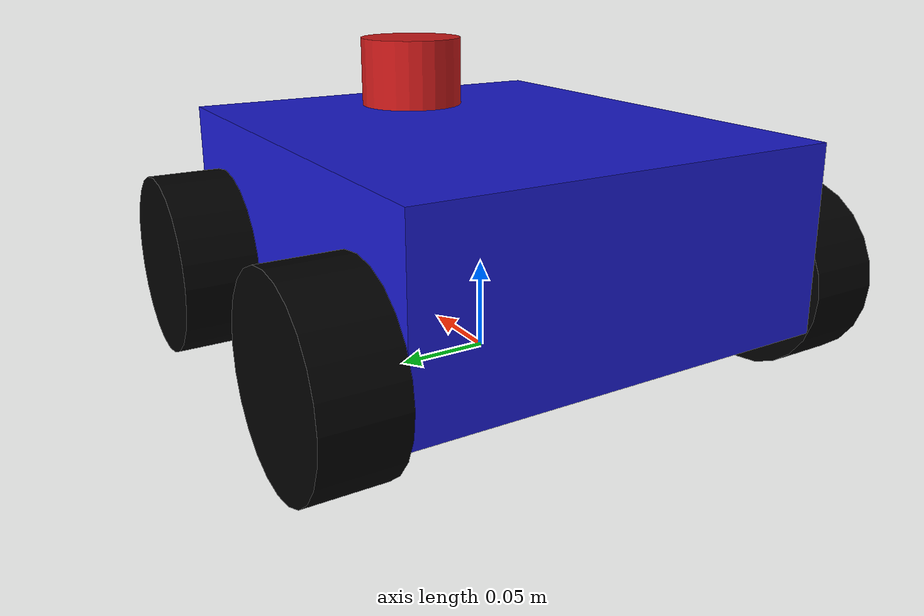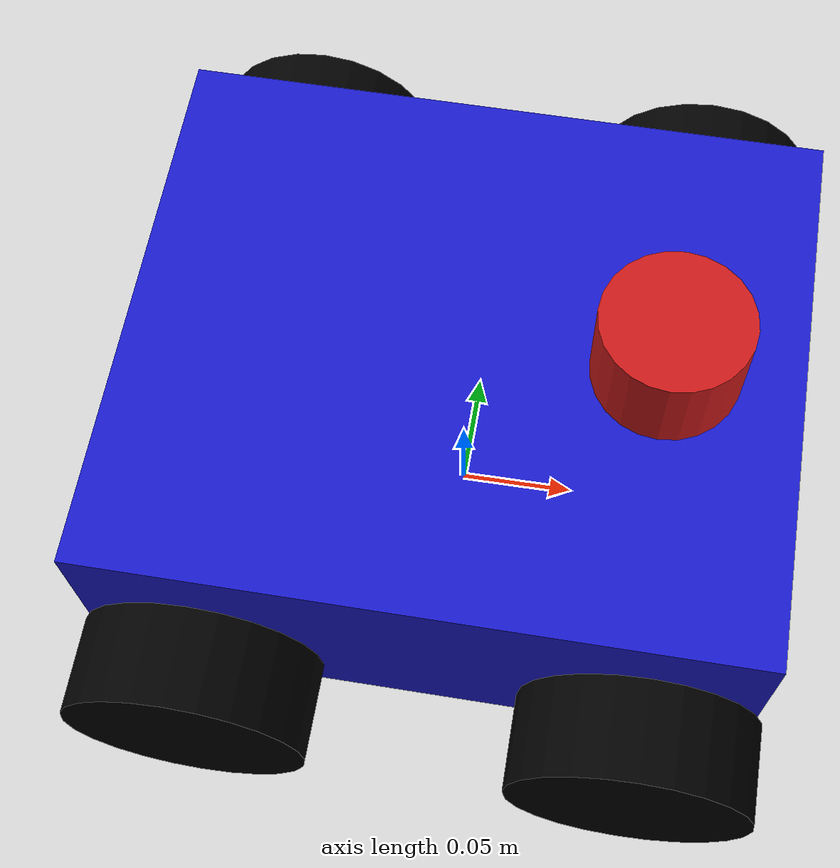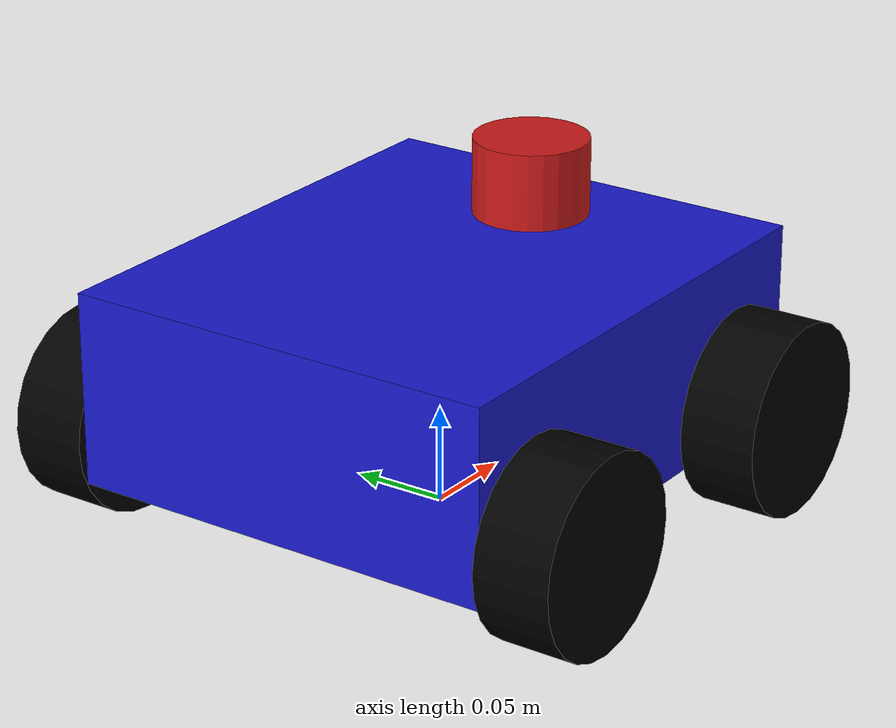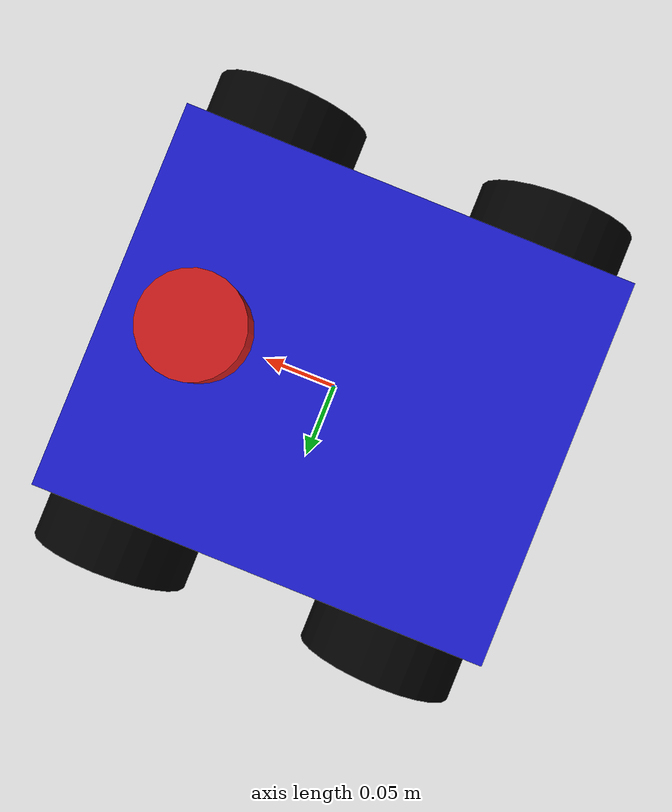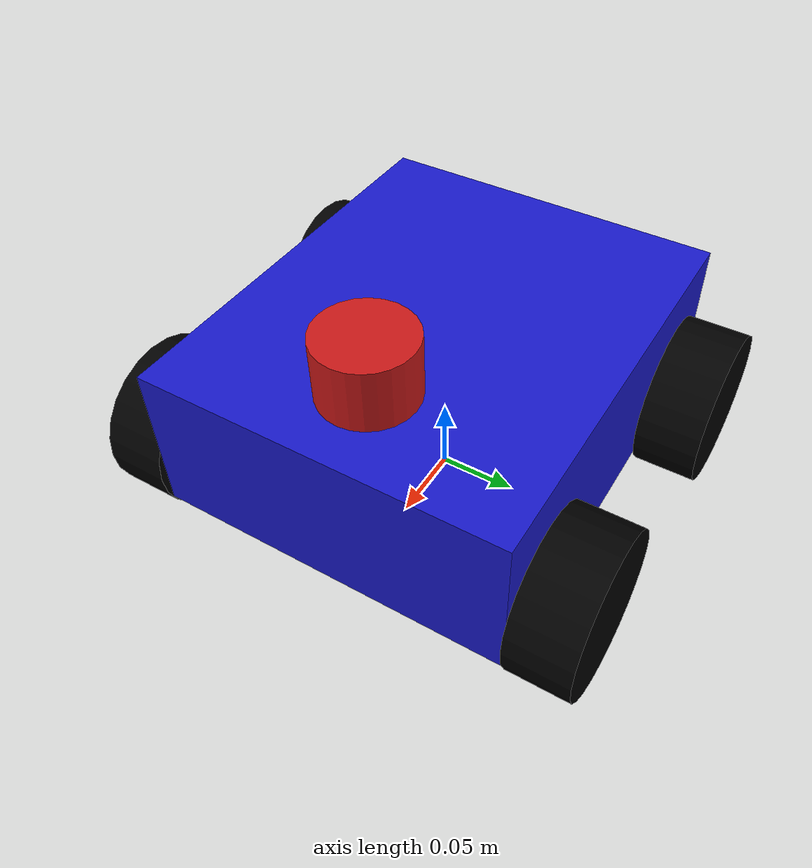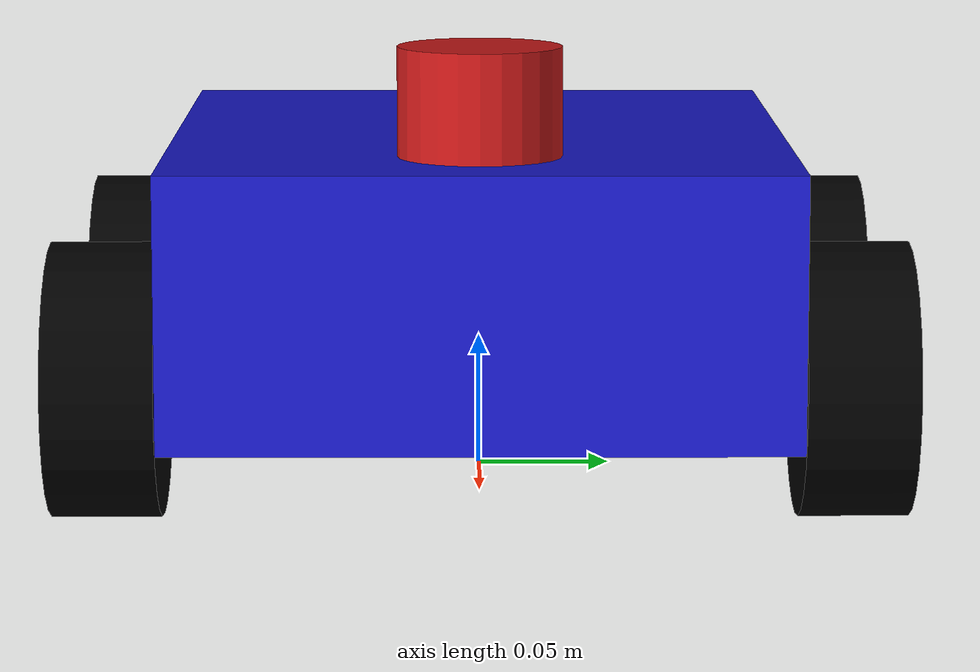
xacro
<?xml version="1.0"?>
<robot name="box_car" xmlns:xacro="http://www.ros.org/wiki/xacro">

    <material name="blue"><color rgba="0.1 0.1 0.8 1.0"/></material>
    <material name="black"><color rgba="0.0 0.0 0.0 1.0"/></material>
    <material name="red"><color rgba="0.8 0.1 0.1 1.0"/></material>

    <xacro:macro name="box_inertia" params="m x y z">
        <inertial>
            <mass value="${m}"/>
            <inertia ixx="${m*(y*y+z*z)/12}" ixy="0" ixz="0" iyy="${m*(x*x+z*z)/12}" iyz="0" izz="${m*(x*x+y*y)/12}"/>
        </inertial>
    </xacro:macro>

    <xacro:macro name="cylinder_inertia" params="m r h">
        <inertial>
            <mass value="${m}"/>
            <inertia ixx="${m*(3*r*r+h*h)/12}" ixy="0" ixz="0" iyy="${m*(3*r*r+h*h)/12}" iyz="0" izz="${m*r*r/2}"/>
        </inertial>
    </xacro:macro>

    <link name="base_footprint"/>

    <joint name="base_footprint_joint" type="fixed">
        <parent link="base_footprint"/>
        <child link="base_link"/>
        <origin xyz="0 0 0.08" rpy="0 0 0"/>
    </joint>

    <link name="base_link">
        <visual>
            <geometry><box size="0.27 0.23 0.10"/></geometry>
            <material name="blue"/>
        </visual>
        <collision>
            <geometry><box size="0.27 0.23 0.10"/></geometry>
        </collision>
        <xacro:box_inertia m="5.0" x="0.27" y="0.23" z="0.10"/>
    </link>

    <gazebo reference="base_link">
        <material>Gazebo/Blue</material>
    </gazebo>

    <xacro:macro name="wheel" params="prefix x_reflect y_reflect">
        <link name="${prefix}_wheel">
            <visual>
                <origin xyz="0 0 0" rpy="${pi/2} 0 0"/>
                <geometry><cylinder radius="0.05" length="0.04"/></geometry>
                <material name="black"/>
            </visual>
            <collision>
                <origin xyz="0 0 0" rpy="${pi/2} 0 0"/>
                <geometry><cylinder radius="0.05" length="0.04"/></geometry>
            </collision>
            <xacro:cylinder_inertia m="0.5" r="0.05" h="0.04"/>
        </link>

        <joint name="${prefix}_wheel_joint" type="continuous">
            <parent link="base_link"/>
            <child link="${prefix}_wheel"/>
            <origin xyz="${x_reflect*0.09} ${y_reflect*0.135} -0.03" rpy="0 0 0"/>
            <axis xyz="0 1 0"/>
        </joint>

        <gazebo reference="${prefix}_wheel">
            <material>Gazebo/Black</material>
            <mu1>1.0</mu1>
            <mu2>1.0</mu2>
        </gazebo>
    </xacro:macro>

    <xacro:wheel prefix="front_left"  x_reflect="1"  y_reflect="1"/>
    <xacro:wheel prefix="front_right" x_reflect="1"  y_reflect="-1"/>
    <xacro:wheel prefix="rear_left"   x_reflect="-1" y_reflect="1"/>
    <xacro:wheel prefix="rear_right"  x_reflect="-1" y_reflect="-1"/>

    <link name="laser_frame">
        <visual>
            <geometry><cylinder radius="0.03" length="0.04"/></geometry>
            <material name="red"/>
        </visual>
        <collision>
            <geometry><cylinder radius="0.03" length="0.04"/></geometry>
        </collision>
        <xacro:cylinder_inertia m="0.1" r="0.03" h="0.04"/>
    </link>

    <joint name="laser_joint" type="fixed">
        <parent link="base_link"/>
        <child link="laser_frame"/>
        <origin xyz="0.08 0 0.07" rpy="0 0 0"/>
    </joint>

    <!-- 旧版 Gazebo 激光雷达插件 -->
    <gazebo reference="laser_frame">
        <material>Gazebo/Red</material>
        <sensor name="gpu_lidar" type="ray">
            <pose>0 0 0 0 0 0</pose>
            <visualize>true</visualize>
            <update_rate>10</update_rate>
            <ray>
                <scan>
                    <horizontal>
                        <samples>360</samples>
                        <resolution>1</resolution>
                        <min_angle>-3.1415926</min_angle>
                        <max_angle>3.1415926</max_angle>
                    </horizontal>
                </scan>
                <range>
                    <min>0.15</min>
                    <max>12.0</max>
                    <resolution>0.01</resolution>
                </range>
                <noise>
                    <type>gaussian</type>
                    <mean>0.0</mean>
                    <stddev>0.01</stddev>
                </noise>
            </ray>
            <plugin name="laser_controller" filename="libgazebo_ros_ray_sensor.so">
                <ros>
                    <argument>~/out:=scan</argument>
                </ros>
                <output_type>sensor_msgs/LaserScan</output_type>
                <frame_name>laser_frame</frame_name>
            </plugin>
        </sensor>
    </gazebo>

    <!-- 差速驱动插件 -->
    <gazebo>
        <plugin name="diff_drive" filename="libgazebo_ros_diff_drive.so">
            <left_joint>front_left_wheel_joint</left_joint>
            <left_joint>rear_left_wheel_joint</left_joint>
            <right_joint>front_right_wheel_joint</right_joint>
            <right_joint>rear_right_wheel_joint</right_joint>
            <wheel_separation>0.27</wheel_separation>
            <wheel_diameter>0.10</wheel_diameter>
            <command_topic>cmd_vel</command_topic>
            <robot_base_frame>base_footprint</robot_base_frame>
        </plugin>
    </gazebo>

</robot>
